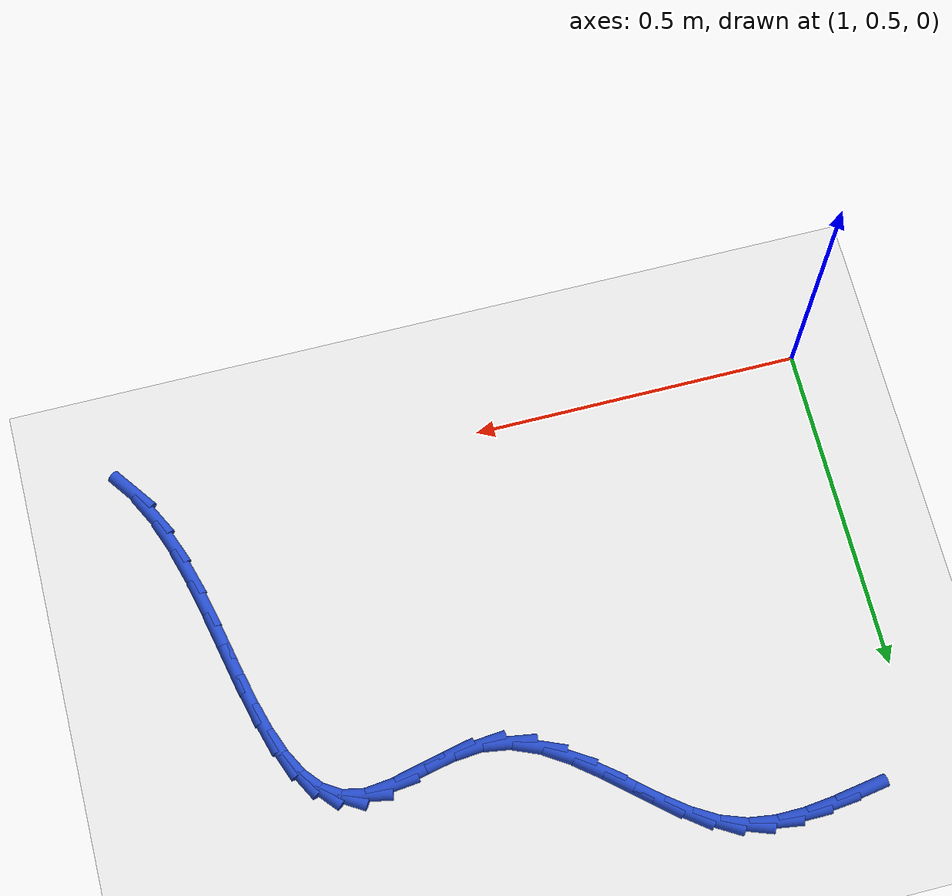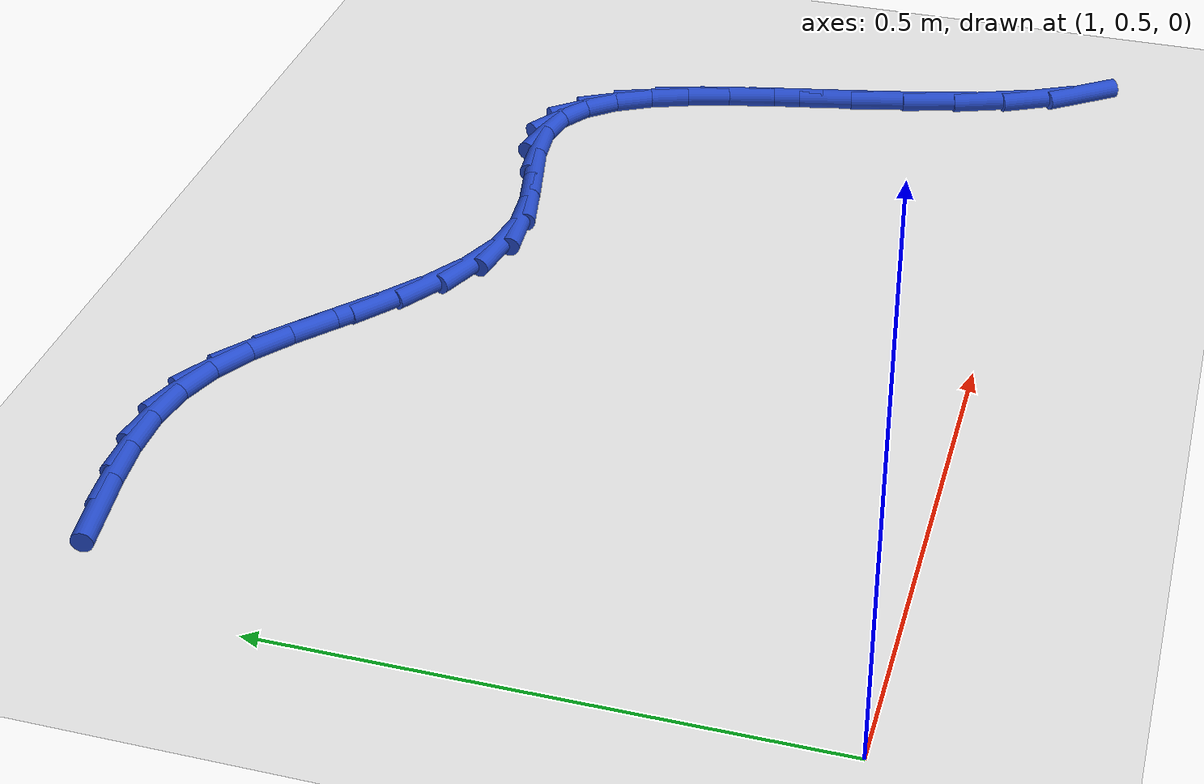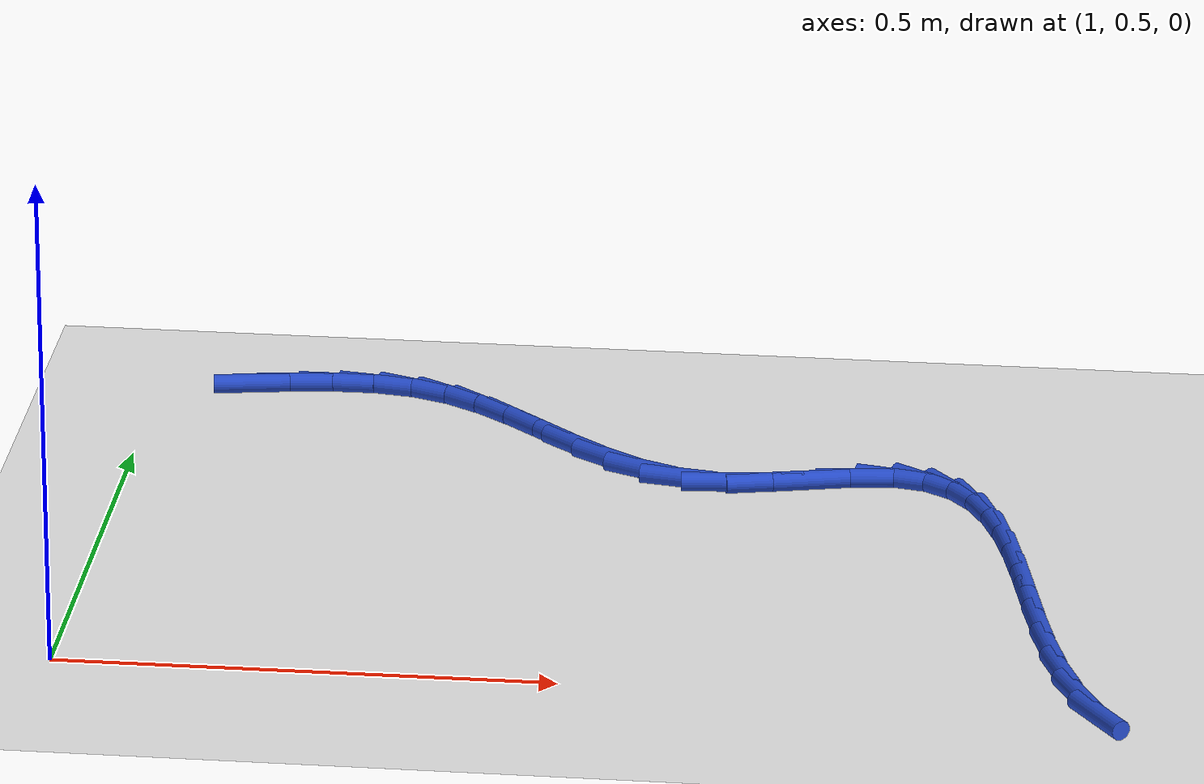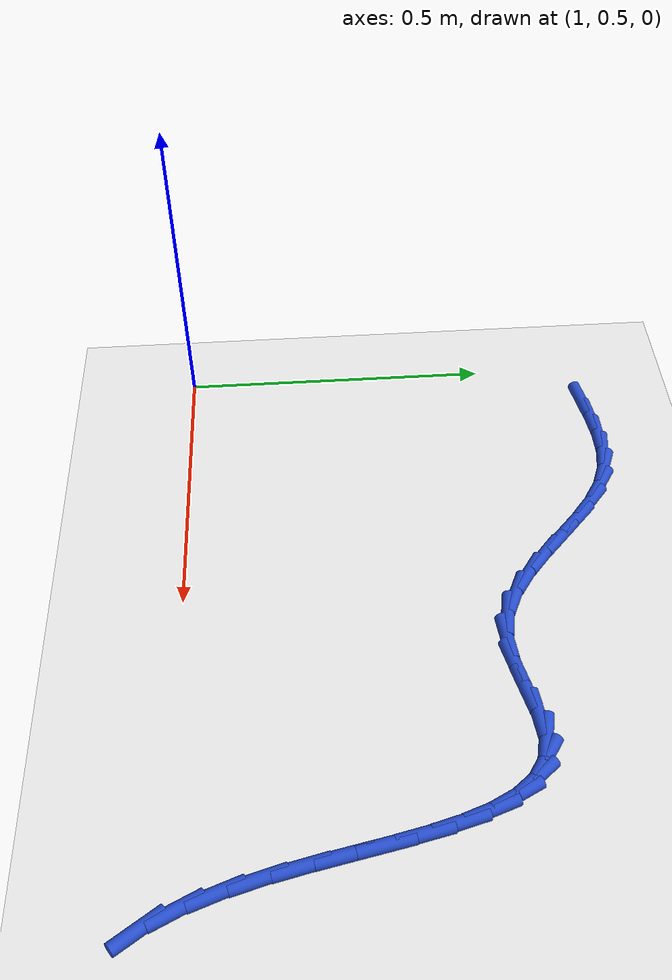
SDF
<sdf version="1.6">
 <world name="default">
  <model name="ground_plane">
   <static>1</static>
   <link name="link">
    <collision name="collision">
     <geometry><plane><normal>0 0 1</normal><size>100 100</size></plane></geometry>
     <surface><friction><ode><mu>100</mu><mu2>50</mu2></ode></friction></surface>
    </collision>
    <visual name="visual">
     <cast_shadows>0</cast_shadows>
     <geometry><plane><normal>0 0 1</normal><size>100 100</size></plane></geometry>
     <material>
      <script><uri>file://media/materials/scripts/gazebo.material</uri><name>Gazebo/WhiteGlow</name></script>
     </material>
    </visual>
   </link>
  </model>
  <model name="line">
   <link name="link_44">
    <pose>1.0983920879651046 1.1720074157546685 0.01 0 1.57 0.16247368161127423</pose>
    <collision name="collision">
     <geometry><cylinder><radius>0.01</radius><length>0.08</length></cylinder></geometry>
    </collision>
    <visual name="visual">
     <material>
      <script><name>Gazebo/Blue</name><uri>file://media/materials/scripts/gazebo.material</uri></script>
     </material>
     <geometry><cylinder><radius>0.01</radius><length>0.08</length></cylinder></geometry>
    </visual>
   </link>
   <link name="link_45">
    <pose>1.143306771644862 1.1793697671067105 0.01 0 1.57 0.10782305388927933</pose>
    <collision name="collision">
     <geometry><cylinder><radius>0.01</radius><length>0.08</length></cylinder></geometry>
    </collision>
    <visual name="visual">
     <material>
      <script><name>Gazebo/Blue</name><uri>file://media/materials/scripts/gazebo.material</uri></script>
     </material>
     <geometry><cylinder><radius>0.01</radius><length>0.08</length></cylinder></geometry>
    </visual>
   </link>
   <link name="link_46">
    <pose>1.1871038921241555 1.1841104922344723 0.01 0 1.57 0.006225276630199771</pose>
    <collision name="collision">
     <geometry><cylinder><radius>0.01</radius><length>0.08</length></cylinder></geometry>
    </collision>
    <visual name="visual">
     <material>
      <script><name>Gazebo/Blue</name><uri>file://media/materials/scripts/gazebo.material</uri></script>
     </material>
     <geometry><cylinder><radius>0.01</radius><length>0.08</length></cylinder></geometry>
    </visual>
   </link>
   <link name="link_47">
    <pose>1.2295522079196026 1.184374748156458 0.01 0 1.57 -0.14737758142121188</pose>
    <collision name="collision">
     <geometry><cylinder><radius>0.01</radius><length>0.08</length></cylinder></geometry>
    </collision>
    <visual name="visual">
     <material>
      <script><name>Gazebo/Blue</name><uri>file://media/materials/scripts/gazebo.material</uri></script>
     </material>
     <geometry><cylinder><radius>0.01</radius><length>0.08</length></cylinder></geometry>
    </visual>
   </link>
   <link name="link_48">
    <pose>1.2704204775478212 1.178307691891171 0.01 0 1.57 -0.3490148421377518</pose>
    <collision name="collision">
     <geometry><cylinder><radius>0.01</radius><length>0.08</length></cylinder></geometry>
    </collision>
    <visual name="visual">
     <material>
      <script><name>Gazebo/Blue</name><uri>file://media/materials/scripts/gazebo.material</uri></script>
     </material>
     <geometry><cylinder><radius>0.01</radius><length>0.08</length></cylinder></geometry>
    </visual>
   </link>
   <link name="link_49">
    <pose>1.3094846104290145 1.1640917668140862 0.01 0 1.57 -0.5401410061688547</pose>
    <collision name="collision">
     <geometry><cylinder><radius>0.01</radius><length>0.08</length></cylinder></geometry>
    </collision>
    <visual name="visual">
     <material>
      <script><name>Gazebo/Blue</name><uri>file://media/materials/scripts/gazebo.material</uri></script>
     </material>
     <geometry><cylinder><radius>0.01</radius><length>0.08</length></cylinder></geometry>
    </visual>
   </link>
   <link name="link_50">
    <pose>1.346860193910875 1.1416805704364865 0.01 0 1.57 -0.6597737508399606</pose>
    <collision name="collision">
     <geometry><cylinder><radius>0.01</radius><length>0.08</length></cylinder></geometry>
    </collision>
    <visual name="visual">
     <material>
      <script><name>Gazebo/Blue</name><uri>file://media/materials/scripts/gazebo.material</uri></script>
     </material>
     <geometry><cylinder><radius>0.01</radius><length>0.08</length></cylinder></geometry>
    </visual>
   </link>
   <link name="link_51">
    <pose>1.3831434959504354 1.1135340728665575 0.01 0 1.57 -0.7170275605148184</pose>
    <collision name="collision">
     <geometry><cylinder><radius>0.01</radius><length>0.08</length></cylinder></geometry>
    </collision>
    <visual name="visual">
     <material>
      <script><name>Gazebo/Blue</name><uri>file://media/materials/scripts/gazebo.material</uri></script>
     </material>
     <geometry><cylinder><radius>0.01</radius><length>0.08</length></cylinder></geometry>
    </visual>
   </link>
   <link name="link_52">
    <pose>1.4189672059867677 1.0823021536923914 0.01 0 1.57 -0.7215025059016286</pose>
    <collision name="collision">
     <geometry><cylinder><radius>0.01</radius><length>0.08</length></cylinder></geometry>
    </collision>
    <visual name="visual">
     <material>
      <script><name>Gazebo/Blue</name><uri>file://media/materials/scripts/gazebo.material</uri></script>
     </material>
     <geometry><cylinder><radius>0.01</radius><length>0.08</length></cylinder></geometry>
    </visual>
   </link>
   <link name="link_53">
    <pose>1.4549640134589423 1.0506346925020829 0.01 0 1.57 -0.6749239642312961</pose>
    <collision name="collision">
     <geometry><cylinder><radius>0.01</radius><length>0.08</length></cylinder></geometry>
    </collision>
    <visual name="visual">
     <material>
      <script><name>Gazebo/Blue</name><uri>file://media/materials/scripts/gazebo.material</uri></script>
     </material>
     <geometry><cylinder><radius>0.01</radius><length>0.08</length></cylinder></geometry>
    </visual>
   </link>
   <link name="link_54">
    <pose>1.4917666078060319 1.0211815688837251 0.01 0 1.57 -0.571436669646734</pose>
    <collision name="collision">
     <geometry><cylinder><radius>0.01</radius><length>0.08</length></cylinder></geometry>
    </collision>
    <visual name="visual">
     <material>
      <script><name>Gazebo/Blue</name><uri>file://media/materials/scripts/gazebo.material</uri></script>
     </material>
     <geometry><cylinder><radius>0.01</radius><length>0.08</length></cylinder></geometry>
    </visual>
   </link>
   <link name="link_55">
    <pose>1.530007678467108 0.9965926624254121 0.01 0 1.57 -0.4006536636887486</pose>
    <collision name="collision">
     <geometry><cylinder><radius>0.01</radius><length>0.08</length></cylinder></geometry>
    </collision>
    <visual name="visual">
     <material>
      <script><name>Gazebo/Blue</name><uri>file://media/materials/scripts/gazebo.material</uri></script>
     </material>
     <geometry><cylinder><radius>0.01</radius><length>0.08</length></cylinder></geometry>
    </visual>
   </link>
   <link name="link_56">
    <pose>1.570319914881242 0.9795178527152377 0.01 0 1.57 -0.1593014714374803</pose>
    <collision name="collision">
     <geometry><cylinder><radius>0.01</radius><length>0.08</length></cylinder></geometry>
    </collision>
    <visual name="visual">
     <material>
      <script><name>Gazebo/Blue</name><uri>file://media/materials/scripts/gazebo.material</uri></script>
     </material>
     <geometry><cylinder><radius>0.01</radius><length>0.08</length></cylinder></geometry>
    </visual>
   </link>
   <link name="link_57">
    <pose>1.6133359211253027 0.9726067798111606 0.01 0 1.57 0.09118167925828746</pose>
    <collision name="collision">
     <geometry><cylinder><radius>0.01</radius><length>0.08</length></cylinder></geometry>
    </collision>
    <visual name="visual">
     <material>
      <script><name>Gazebo/Blue</name><uri>file://media/materials/scripts/gazebo.material</uri></script>
     </material>
     <geometry><cylinder><radius>0.01</radius><length>0.08</length></cylinder></geometry>
    </visual>
   </link>
   <link name="link_58">
    <pose>1.65907529817504 0.9767889698282126 0.01 0 1.57 0.2197144508960467</pose>
    <collision name="collision">
     <geometry><cylinder><radius>0.01</radius><length>0.08</length></cylinder></geometry>
    </collision>
    <visual name="visual">
     <material>
      <script><name>Gazebo/Blue</name><uri>file://media/materials/scripts/gazebo.material</uri></script>
     </material>
     <geometry><cylinder><radius>0.01</radius><length>0.08</length></cylinder></geometry>
    </visual>
   </link>
   <link name="link_59">
    <pose>1.705475381158548 0.9871510183792858 0.01 0 1.57 0.22907294432351802</pose>
    <collision name="collision">
     <geometry><cylinder><radius>0.01</radius><length>0.08</length></cylinder></geometry>
    </collision>
    <visual name="visual">
     <material>
      <script><name>Gazebo/Blue</name><uri>file://media/materials/scripts/gazebo.material</uri></script>
     </material>
     <geometry><cylinder><radius>0.01</radius><length>0.08</length></cylinder></geometry>
    </visual>
   </link>
   <link name="link_60">
    <pose>1.7500317883702818 0.9975400440126677 0.01 0 1.57 0.10563113398468948</pose>
    <collision name="collision">
     <geometry><cylinder><radius>0.01</radius><length>0.08</length></cylinder></geometry>
    </collision>
    <visual name="visual">
     <material>
      <script><name>Gazebo/Blue</name><uri>file://media/materials/scripts/gazebo.material</uri></script>
     </material>
     <geometry><cylinder><radius>0.01</radius><length>0.08</length></cylinder></geometry>
    </visual>
   </link>
   <link name="link_61">
    <pose>1.7902401381046957 1.001803165276645 0.01 0 1.57 -0.1973960808550893</pose>
    <collision name="collision">
     <geometry><cylinder><radius>0.01</radius><length>0.08</length></cylinder></geometry>
    </collision>
    <visual name="visual">
     <material>
      <script><name>Gazebo/Blue</name><uri>file://media/materials/scripts/gazebo.material</uri></script>
     </material>
     <geometry><cylinder><radius>0.01</radius><length>0.08</length></cylinder></geometry>
    </visual>
   </link>
   <link name="link_62">
    <pose>1.8241523940616622 0.9950206957100494 0.01 0 1.57 -0.5646404480415788</pose>
    <collision name="collision">
     <geometry><cylinder><radius>0.01</radius><length>0.08</length></cylinder></geometry>
    </collision>
    <visual name="visual">
     <material>
      <script><name>Gazebo/Blue</name><uri>file://media/materials/scripts/gazebo.material</uri></script>
     </material>
     <geometry><cylinder><radius>0.01</radius><length>0.08</length></cylinder></geometry>
    </visual>
   </link>
   <link name="link_63">
    <pose>1.8520972349242029 0.9773195143212523 0.01 0 1.57 -0.8713072369716914</pose>
    <collision name="collision">
     <geometry><cylinder><radius>0.01</radius><length>0.08</length></cylinder></geometry>
    </collision>
    <visual name="visual">
     <material>
      <script><name>Gazebo/Blue</name><uri>file://media/materials/scripts/gazebo.material</uri></script>
     </material>
     <geometry><cylinder><radius>0.01</radius><length>0.08</length></cylinder></geometry>
    </visual>
   </link>
   <link name="link_64">
    <pose>1.8749856461086294 0.9501172409775617 0.01 0 1.57 -1.0825195071482632</pose>
    <collision name="collision">
     <geometry><cylinder><radius>0.01</radius><length>0.08</length></cylinder></geometry>
    </collision>
    <visual name="visual">
     <material>
      <script><name>Gazebo/Blue</name><uri>file://media/materials/scripts/gazebo.material</uri></script>
     </material>
     <geometry><cylinder><radius>0.01</radius><length>0.08</length></cylinder></geometry>
    </visual>
   </link>
   <link name="link_65">
    <pose>1.8937286132812754 0.9148314961004854 0.01 0 1.57 -1.2167012003152116</pose>
    <collision name="collision">
     <geometry><cylinder><radius>0.01</radius><length>0.08</length></cylinder></geometry>
    </collision>
    <visual name="visual">
     <material>
      <script><name>Gazebo/Blue</name><uri>file://media/materials/scripts/gazebo.material</uri></script>
     </material>
     <geometry><cylinder><radius>0.01</radius><length>0.08</length></cylinder></geometry>
    </visual>
   </link>
   <link name="link_66">
    <pose>1.909237122108475 0.8728799001115313 0.01 0 1.57 -1.2983950971608522</pose>
    <collision name="collision">
     <geometry><cylinder><radius>0.01</radius><length>0.08</length></cylinder></geometry>
    </collision>
    <visual name="visual">
     <material>
      <script><name>Gazebo/Blue</name><uri>file://media/materials/scripts/gazebo.material</uri></script>
     </material>
     <geometry><cylinder><radius>0.01</radius><length>0.08</length></cylinder></geometry>
    </visual>
   </link>
   <link name="link_67">
    <pose>1.9224221582565633 0.8256800734322086 0.01 0 1.57 -1.3440664227321206</pose>
    <collision name="collision">
     <geometry><cylinder><radius>0.01</radius><length>0.08</length></cylinder></geometry>
    </collision>
    <visual name="visual">
     <material>
      <script><name>Gazebo/Blue</name><uri>file://media/materials/scripts/gazebo.material</uri></script>
     </material>
     <geometry><cylinder><radius>0.01</radius><length>0.08</length></cylinder></geometry>
    </visual>
   </link>
   <link name="link_68">
    <pose>1.9341947073918726 0.7746496364840242 0.01 0 1.57 -1.362945364394207</pose>
    <collision name="collision">
     <geometry><cylinder><radius>0.01</radius><length>0.08</length></cylinder></geometry>
    </collision>
    <visual name="visual">
     <material>
      <script><name>Gazebo/Blue</name><uri>file://media/materials/scripts/gazebo.material</uri></script>
     </material>
     <geometry><cylinder><radius>0.01</radius><length>0.08</length></cylinder></geometry>
    </visual>
   </link>
   <link name="link_69">
    <pose>1.9454657551807395 0.7212062096884863 0.01 0 1.57 -1.3594382358039503</pose>
    <collision name="collision">
     <geometry><cylinder><radius>0.01</radius><length>0.08</length></cylinder></geometry>
    </collision>
    <visual name="visual">
     <material>
      <script><name>Gazebo/Blue</name><uri>file://media/materials/scripts/gazebo.material</uri></script>
     </material>
     <geometry><cylinder><radius>0.01</radius><length>0.08</length></cylinder></geometry>
    </visual>
   </link>
   <link name="link_70">
    <pose>1.957146287289496 0.6667674134671038 0.01 0 1.57 -1.3346032305884994</pose>
    <collision name="collision">
     <geometry><cylinder><radius>0.01</radius><length>0.08</length></cylinder></geometry>
    </collision>
    <visual name="visual">
     <material>
      <script><name>Gazebo/Blue</name><uri>file://media/materials/scripts/gazebo.material</uri></script>
     </material>
     <geometry><cylinder><radius>0.01</radius><length>0.08</length></cylinder></geometry>
    </visual>
   </link>
   <link name="link_71">
    <pose>1.970147289384478 0.6127508682413843 0.01 0 1.57 -1.2867503392354904</pose>
    <collision name="collision">
     <geometry><cylinder><radius>0.01</radius><length>0.08</length></cylinder></geometry>
    </collision>
    <visual name="visual">
     <material>
      <script><name>Gazebo/Blue</name><uri>file://media/materials/scripts/gazebo.material</uri></script>
     </material>
     <geometry><cylinder><radius>0.01</radius><length>0.08</length></cylinder></geometry>
    </visual>
   </link>
   <link name="link_72">
    <pose>1.985379747132019 0.5605741944328366 0.01 0 1.57 -1.2114844282544301</pose>
    <collision name="collision">
     <geometry><cylinder><radius>0.01</radius><length>0.08</length></cylinder></geometry>
    </collision>
    <visual name="visual">
     <material>
      <script><name>Gazebo/Blue</name><uri>file://media/materials/scripts/gazebo.material</uri></script>
     </material>
     <geometry><cylinder><radius>0.01</radius><length>0.08</length></cylinder></geometry>
    </visual>
   </link>
   <link name="link_73">
    <pose>2.003754646198453 0.5116550124629684 0.01 0 1.57 -1.1016258572999107</pose>
    <collision name="collision">
     <geometry><cylinder><radius>0.01</radius><length>0.08</length></cylinder></geometry>
    </collision>
    <visual name="visual">
     <material>
      <script><name>Gazebo/Blue</name><uri>file://media/materials/scripts/gazebo.material</uri></script>
     </material>
     <geometry><cylinder><radius>0.01</radius><length>0.08</length></cylinder></geometry>
    </visual>
   </link>
   <link name="link_74">
    <pose>2.026182972250115 0.46741094275328754 0.01 0 1.57 -0.948090337947648</pose>
    <collision name="collision">
     <geometry><cylinder><radius>0.01</radius><length>0.08</length></cylinder></geometry>
    </collision>
    <visual name="visual">
     <material>
      <script><name>Gazebo/Blue</name><uri>file://media/materials/scripts/gazebo.material</uri></script>
     </material>
     <geometry><cylinder><radius>0.01</radius><length>0.08</length></cylinder></geometry>
    </visual>
   </link>
  </model>
 </world>
</sdf>
